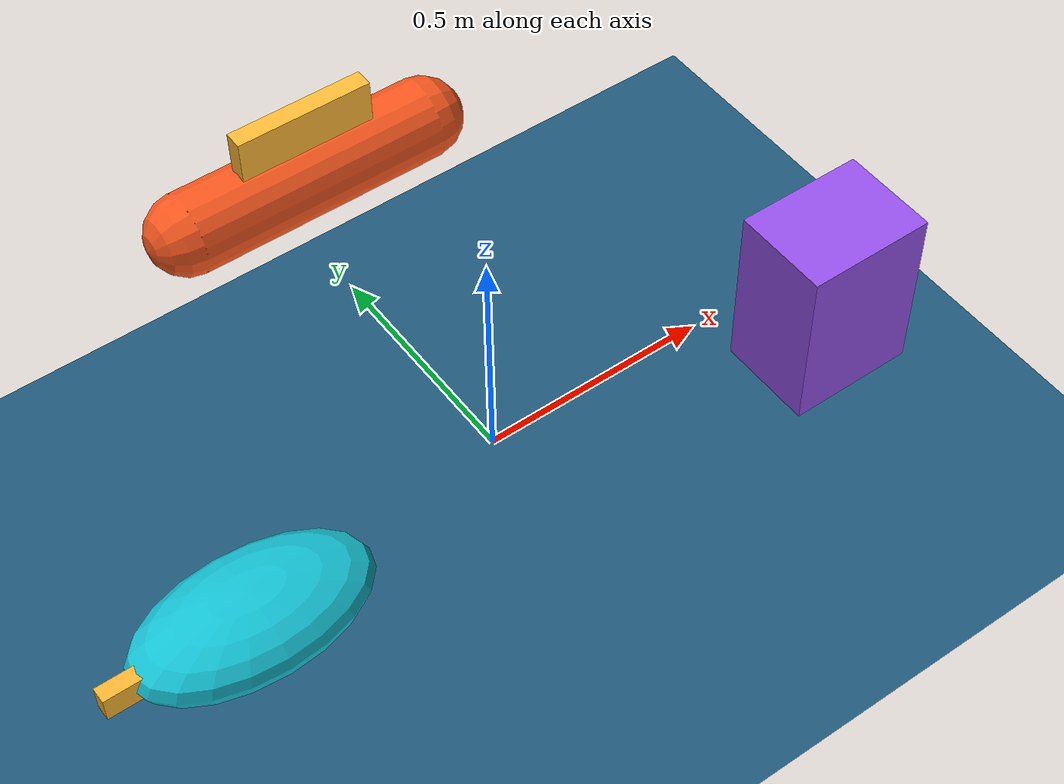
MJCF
<!-- Copyright 2026 The MuJoCo Metal contributors; Apache-2.0. -->
<mujoco model="inertia_box_current_buoys">
  <compiler angle="radian" inertiafromgeom="true"/>
  <option timestep=".002" integrator="Euler" gravity="0 0 0"
          density="1.4" viscosity=".055" wind=".38 .04 0">
    <flag contact="disable"/>
  </option>
  <visual><headlight ambient=".55 .55 .55" diffuse=".9 .9 .9" specular=".12 .12 .12"/></visual>
  <default>
    <joint limited="false" damping="0" frictionloss="0"/>
    <geom contype="0" conaffinity="0"/>
  </default>
  <worldbody>
    <light pos="0 -1 3" diffuse=".9 .95 1"/>
    <geom name="waterline" type="plane" pos="0 0 -.2" size="3 2 .05" rgba=".12 .34 .47 1"/>
    <body name="ray_buoy" pos="-.7 -.35 .45">
      <freejoint name="ray_free"/>
      <geom name="ray_body" type="ellipsoid" size=".22 .12 .07" mass="1.2" rgba=".08 .75 .82 1"/>
      <geom type="box" pos="-.18 0 0" size=".09 .015 .025" mass=".08" rgba=".96 .7 .19 1"/>
    </body>
    <body name="amber_glider" pos="-.2 .25 .65">
      <freejoint name="amber_free"/>
      <geom name="amber_body" type="capsule" size=".075 .24" euler="0 1.5708 0" mass="1.1" rgba=".96 .34 .12 1"/>
      <geom type="box" pos="0 0 .11" size=".13 .018 .045" mass=".07" rgba="1 .72 .21 1"/>
    </body>
    <body name="violet_drifter" pos=".55 -.3 .35">
      <freejoint name="violet_free"/>
      <geom name="violet_body" type="box" size=".13 .1 .18" mass=".95" rgba=".57 .31 .9 1"/>
      <geom type="ellipsoid" pos=".15 0 0" size=".09 .035 .035" mass=".06" rgba=".86 .76 1 1"/>
    </body>
  </worldbody>
</mujoco>
